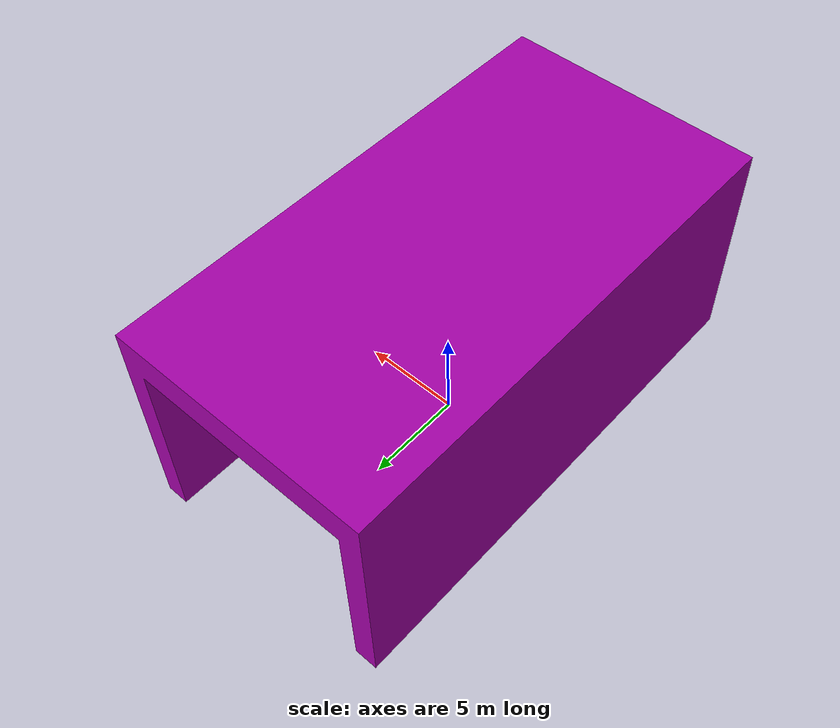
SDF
<?xml version="1.0" ?>
<sdf version="1.5">
  <model name="tunnel">
    <static>true</static>
    <link name="tunnel_link">
      <collision name="collision">
        <geometry>
          <mesh>
          <scale>1.6 1.6 2.5</scale>
            <uri>model://tunnel/meshes/model.dae</uri>
          </mesh>
        </geometry>
      </collision>
      <visual name="visual">
        <geometry>
          <mesh>
          <scale>1.6 1.6 2.5</scale>
            <uri>model://tunnel/meshes/model.dae</uri>
          </mesh>
        </geometry>
      </visual>
    </link>
  </model>
</sdf>
